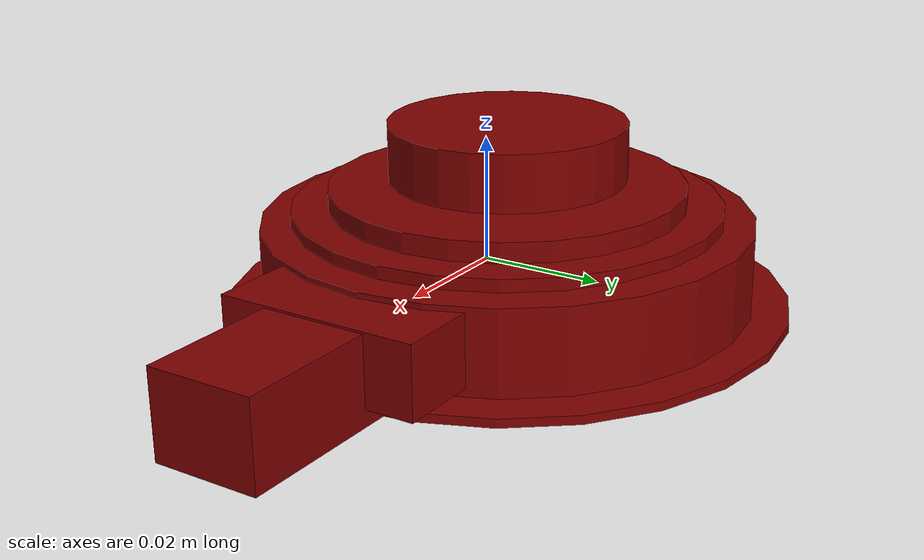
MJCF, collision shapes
<?xml version='1.0' encoding='utf-8'?>
<mujoco model="model">
  <option timestep="0.002" gravity="0.0 0.0 -9.81" />
  <compiler angle="radian" />
  <asset>
    <mesh file="visuals/lid.obj" name="lid_vis" />
    <texture file="visuals/T_BC001.png" name="lid_material" type="2d" />
    <material name="lid_material" rgba="1 1 1 1.0" texture="lid_material" shininess="0.15" specular="2" />

  </asset>
  <default>
    <default class="visual">
      <geom conaffinity="0" contype="0" group="1" type="mesh" />
    </default>
    <default class="collision">
      <geom group="0" rgba="0.5 0 0 0.5" />
    </default>
    <default class="spawn">
      <geom group="0" rgba="1 1 1 0.5" contype="0" conaffinity="0" />
      <site group="0" rgba="1 1 1 0.5" />
    </default>
    <default class="region">
      <geom group="1" conaffinity="0" contype="0" rgba="0 1 0 0" />
    </default>
  </default>
  <worldbody>
    <body>
      <body name="object">
        <geom mesh="lid_vis" type="mesh" solimp="0.998 0.998 0.001" solref="0.001 1" friction="0.95 0.3 0.1" class="visual" material="lid_material" />
        <geom class="collision" type="cylinder" pos="-0.005901592902344605 0.0003039912551958011 -0.001110858025724859" size="0.03988746181130409 0.006859514396637678" quat="1.0 0.0 0.0 0.0" density="1000.0" />
        <geom class="collision" type="cylinder" pos="-0.005901592902344605 0.0003039912551958011 -0.008588858025724858" size="0.045904722064733505 0.0007029778207652271" quat="1.0 0.0 0.0 0.0" density="1000.0" />
        <geom class="collision" name="handle_main" type="cylinder" pos="-0.006616592902344605 -0.00023300874480419904 0.016588141974275147" size="0.019289351999759674 0.004582580644637346" quat="1.0 0.0 0.0 0.0" density="1000.0" />
        <geom class="collision" type="box" pos="0.050049407097655395 -0.00043800874480419937 -0.0024148580257248586" size="0.015266613103449345 0.008549760095775127 0.006911179516464472" quat="1.0 0.0 0.0 0.0" density="1000.0" />
        <geom class="collision" type="box" pos="0.0364044070976554 -0.00043800874480419937 -0.0008768580257248609" size="0.006593892816454172 0.016444940119981766 0.0057326871901750565" quat="1.0 0.0 0.0 0.0" density="1000.0" />
        <geom class="collision" type="cylinder" pos="-0.006616592902344605 -0.00023300874480419904 0.009183141974275152" size="0.028988415375351906 0.0018546077189967036" quat="1.0 0.0 0.0 0.0" density="1000.0" />
        <geom class="collision" type="cylinder" pos="-0.006616592902344605 -0.00023300874480419904 0.005543141974275148" size="0.035023611038923264 0.002240724628791213" quat="1.0 0.0 0.0 0.0" density="1000.0" />
      </body>
      <geom class="region" name="reg_main" type="box" pos="-0.010925499999999998 0.0068080000000000016 0.0" size="0.06328149999999999 0.063283 0.147364" />
      </body>
  </worldbody>
</mujoco>
